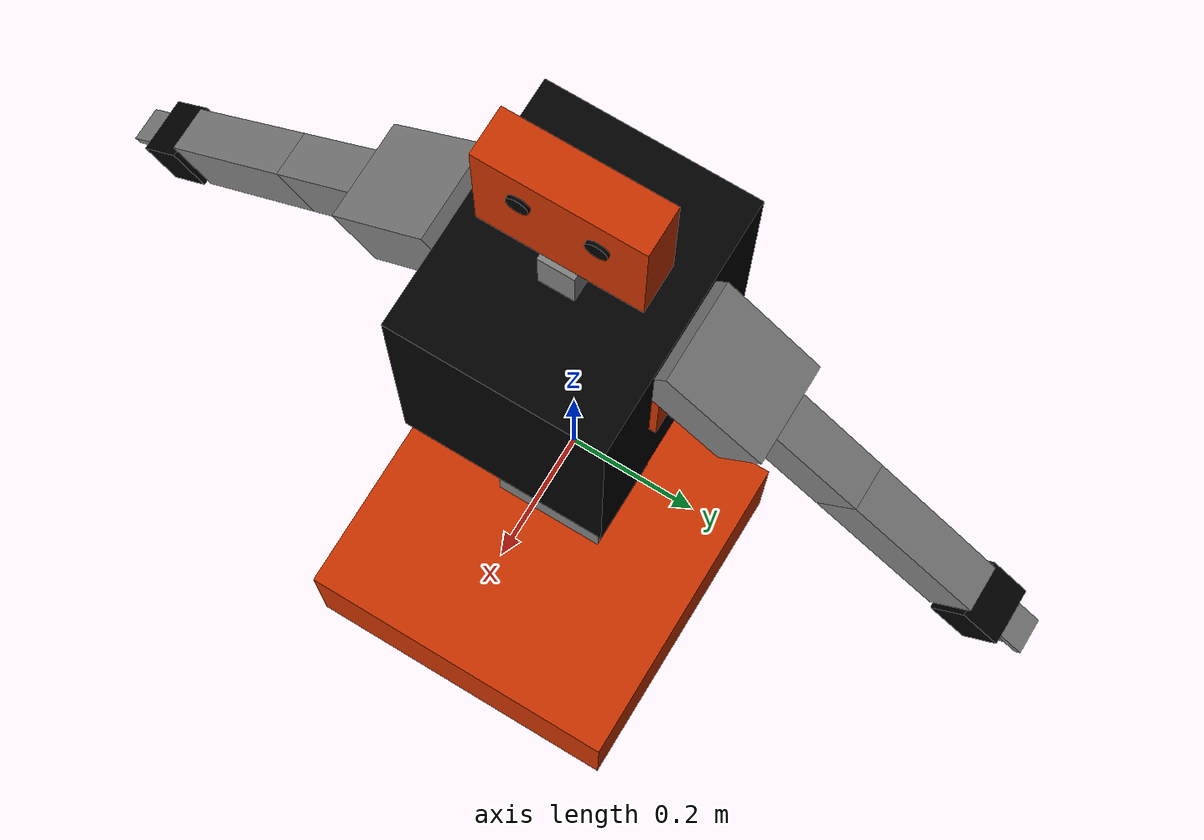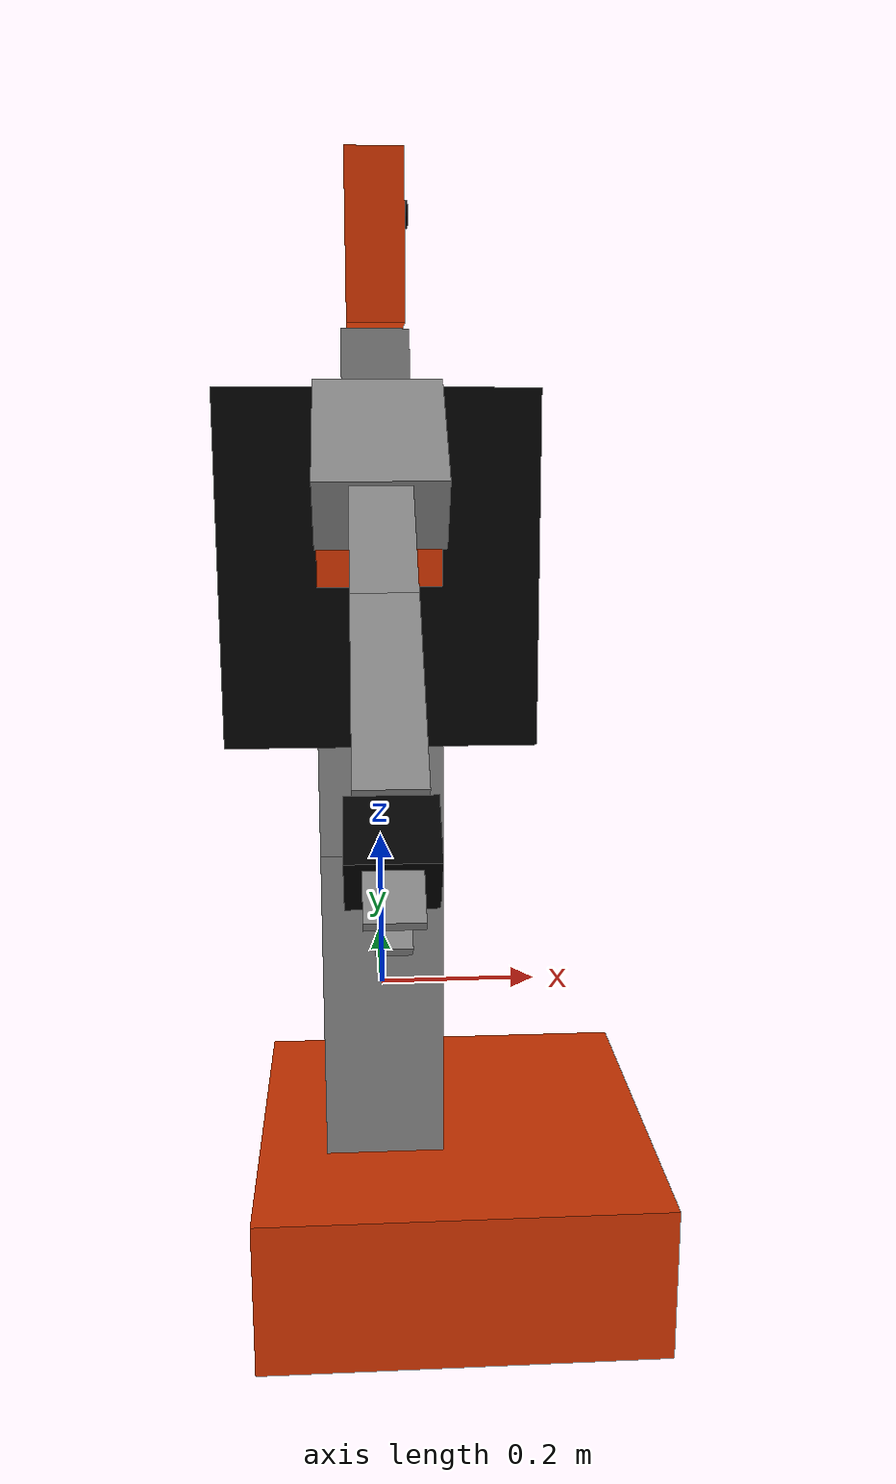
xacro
<?xml version="1.0"?>
<robot xmlns:xacro="http://www.ros.org/wiki/xacro" name="tangerige">

<!-- .......................MACROS.................... -->

  <xacro:macro name="default_physics" params="mass len rad">
  	<collision>
      <geometry>
        <cylinder length="${len}" radius="${rad}"/>
      </geometry>
    </collision>
  	<inertial>
  		<mass value="${mass}" />
  		<inertia ixx="1.0" ixy="0.0" ixz="0.0"
  											 iyy="1.0" iyz="0.0"
  											 izz="1.0" />
  	</inertial>
  	<dynamics damping="0.7" friction="1000.0"/>
  </xacro:macro>

  <xacro:macro name="gazebo_colors" params="name color">
  	<gazebo reference="${name}">
    	<material>Gazebo/${color}</material>
  	</gazebo>
  </xacro:macro>

<!-- ....................... END MACROS.................... -->

<!-- ................BASE................. -->

  <link name="base_laser">
    <visual>
      <geometry>
        <box size="0.176 0.15 0.4"/>
      </geometry>
      <material name="grey">
      	<color rgba="0.5 0.5 0.5 1"/>
      </material>
      <origin rpy="0 0 1.57075"/>
    </visual>
  </link>

  <xacro:gazebo_colors name="base_laser" color="Red" />

  <link name="base_link_robot">
    <visual>
      <geometry>
        <box size="0.51 0.51 0.2"/>
      </geometry>
      <material name="orange">
      	<color rgba=".8 .2 0 1"/>
      </material>
    </visual>
  </link>

  <xacro:gazebo_colors name="base_link" color="Red" />

  <joint name="laser_to_base_link" type="fixed">
    <parent link="base_laser"/>
    <child link="base_link_robot"/>
    <origin xyz="0.093 0 -0.3"/>
  </joint>

  <link name="upper_base_laser">
    <visual>
      <geometry>
        <box size="0.176 0.15 0.15"/>
      </geometry>
      <material name="grey"/>
    </visual>
  </link>

  <xacro:gazebo_colors name="upper_base_laser" color="Gray" />

  <joint name="laser_to_upper_base" type="fixed">
    <parent link="base_laser"/>
    <child link="upper_base_laser"/>
    <origin rpy="0 0 -1.57075" xyz="0 0 0.275"/>
  </joint>

  <link name="superior_link">
    <visual>
      <geometry>
        <box size="0.300 0.360 0.4"/>
      </geometry>
      <material name="black">
      	<color rgba="0 0 0 1"/>
      </material>
    </visual>
  </link>

  <xacro:gazebo_colors name="superior_link" color="Black" />

  <joint name="upper_base_to_superior_link" type="fixed">
    <parent link="upper_base_laser"/>
    <child link="superior_link"/>
    <origin xyz="0 0 0.275"/>
  </joint>

  <!-- ................END BASE................. -->

  <!-- ................HEAD................. -->

  <link name="neck_link">
    <visual>
      <geometry>
        <box size="0.05 0.08 0.07"/>
      </geometry>
      <material name="grey"/>
    </visual>
  </link>

  <xacro:gazebo_colors name="neck_link" color="Red" />

  <joint name="superior_to_neck_link" type="fixed">
    <parent link="superior_link"/>
    <child link="neck_link"/>
    <origin xyz="0 0 0.235"/>
  </joint>

  <link name="neck_z_revolute">
  </link>
<!-- These joint are really revolute...change them back! -->
  <joint name="neck_to_z_revolute" type="fixed">
  	<axis xyz="0 0 1"/>
  	<limit effort="1000.0" lower="-0.7853" upper="0.7853" velocity="5"/>
    <parent link="neck_link"/>
    <child link="neck_z_revolute"/>
  </joint>

  <link name="neck_x_revolute">
  </link>

  <joint name="z_revolute_to_x_revolute" type="fixed">
  	<axis xyz="1 0 0"/>
  	<limit effort="1000.0" lower="-0.3926" upper="0.3926" velocity="5"/>
    <parent link="neck_z_revolute"/>
    <child link="neck_x_revolute"/>
  </joint>

  <link name="head">
    <visual>
      <geometry>
        <box size="0.222 0.065 0.18"/>
      </geometry>
      <material name="orange"/>
    </visual>
  </link>

  <xacro:gazebo_colors name="head" color="Red" />

  <joint name="revolute_head" type="fixed">
    <parent link="neck_x_revolute"/>
    <child link="head"/>
    <origin xyz="0 0 0.125"/>
  </joint>

  <link name="right_eye">
    <visual>
      <geometry>
        <cylinder length="0.015" radius="0.015"/>
      </geometry>
      <material name="black"/>
      <origin rpy="-1.57075 0 0" />
    </visual>
  </link>

  <joint name="right_eye_to_head" type="fixed">
    <parent link="head"/>
    <child link="right_eye"/>
    <origin xyz="0.05 0.03 0.03"/>
  </joint>

  <link name="left_eye">
    <visual>
      <geometry>
        <cylinder length="0.015" radius="0.015"/>
      </geometry>
      <material name="black"/>
      <origin rpy="-1.57075 0 0" />
    </visual>
  </link>

  <joint name="left_eye_to_head" type="fixed">
    <parent link="head"/>
    <child link="left_eye"/>
    <origin xyz="-0.05 0.03 0.03"/>
  </joint>

  <!-- ................END HEAD................. -->

  <!-- ................RIGHT ARM................. -->

  <link name="right_shoulder_link">
    <visual>
      <geometry>
        <box size="0.01 0.14 0.17"/>
      </geometry>
      <origin xyz="0.05 0 -0.05" rpy="0 1.57075 0"/>
      <material name="orange"/>
    </visual>
  </link>

  <xacro:gazebo_colors name="right_shoulder_link" color="Gray" />

  <joint name="superior_link_to_right_shoulder" type="fixed">
    <parent link="superior_link"/>
    <child link="right_shoulder_link"/>
    <origin xyz="0.205 0 0.12" rpy="0 1.57075 0"/>
  </joint>

  <link name="right_shoulder_x_revolute">
  </link>

  <xacro:gazebo_colors name="right_shoulder_x_revolute" color="Gray" />

  <joint name="right_shoulder_x_revolute" type="revolute">
  	<axis xyz="0 0 1"/>
  	<limit effort="1000.0" lower="-0.34906585" upper="3.351032164" velocity="5"/>
    <parent link="right_shoulder_link"/>
    <child link="right_shoulder_x_revolute"/>
    <origin xyz="0 0 0" rpy="0 0 0"/>
  </joint>

  <link name="right_shoulder_y_revolute">
  	<visual>
      <geometry>
        <box size="0.09 0.17 0.14"/>
      </geometry>
      <origin xyz="0 0 0" rpy="0 0 0"/>
      <material name="grey"/>
    </visual>
  </link>

  <joint name="right_shoulder_y_revolute" type="revolute">
  	<axis xyz="0 0 1"/>
  	<limit effort="1000.0" lower="-3.490658504" upper="-1.483529864" velocity="5"/>
    <parent link="right_shoulder_x_revolute"/>
    <child link="right_shoulder_y_revolute"/>
    <origin xyz="0 0 0" rpy="-1.57075 0 0"/>
  </joint>

  <link name="upper_right_arm_z_revolute">
  	<visual>
      <geometry>
        <box size="0.08 0.065 -0.154"/>
      </geometry>
      <origin xyz="0 0 -0.077" rpy="0 0 0"/>
      <material name="grey"/>
    </visual>
  </link>

  <joint name="upper_right_arm_z_revolute" type="revolute">
  	<axis xyz="0 0 1"/>
  	<limit effort="1000.0" lower="-3.403392041" upper="0.261799388" velocity="5"/>
    <parent link="right_shoulder_y_revolute"/>
    <child link="upper_right_arm_z_revolute"/>
    <origin xyz="0 0.239 0" rpy="-1.57075 0 0"/>
  </joint>

  <link name="upper_right_arm_x_revolute">
  	<visual>
      <geometry>
        <box size="0.08 0.232 0.065"/>
      </geometry>
      <origin xyz="0 0.116 0" rpy="0 0 0"/>
      <material name="grey"/>
    </visual>
  </link>

  <xacro:gazebo_colors name="upper_right_arm_x_revolute" color="Gray" />

  <joint name="upper_right_arm_x_revolute" type="revolute">
  	<axis xyz="0 0 1"/>
  	<limit effort="1000.0" lower="-2.251474735" upper="1.570796327" velocity="0"/>
    <parent link="upper_right_arm_z_revolute"/>
    <child link="upper_right_arm_x_revolute"/>
    <origin xyz="0 0 0" rpy="1.57075 0 0"/>
  </joint>

  <link name="wrist_right_arm_z_revolute">
  </link>

  <joint name="wrist_right_arm_z_revolute" type="revolute">
  	<axis xyz="0 0 1"/>
  	<limit effort="1000.0" lower="0" upper="3.141592654" velocity="5"/>
    <parent link="upper_right_arm_x_revolute"/>
    <child link="wrist_right_arm_z_revolute"/>
    <origin xyz="0 0.232 0" rpy="-1.57075 0 0"/>
  </joint>

  <link name="wrist_right_arm_x_revolute">
  </link>

  <joint name="wrist_right_arm_x_revolute" type="revolute">
  	<axis xyz="0 0 1"/>
  	<limit effort="1000.0" lower="-1.047197551" upper="1.483529864" velocity="5"/>
    <parent link="wrist_right_arm_z_revolute"/>
    <child link="wrist_right_arm_x_revolute"/>
    <origin xyz="0 0 0" rpy="1.57075 0 0"/>
  </joint>

  <link name="wrist_right_arm">
    <visual>
      <geometry>
        <box size="0.065 0.069 0.08"/>
      </geometry>
      <origin xyz="0 -0.0345 0" rpy="0 0 0"/>
      <material name="black"/>
    </visual>
  </link>

  <xacro:gazebo_colors name="wrist_right_arm" color="Black" />

  <joint name="wrist_right_arm" type="fixed">
    <parent link="wrist_right_arm_x_revolute"/>
    <child link="wrist_right_arm"/>
    <origin xyz="0 0.069 0"/>
  </joint>

  <link name="finger1_right_arm">
    <visual>
      <geometry>
        <box size="0.01 0.05 0.03"/>
      </geometry>
      <origin xyz="0 0.025 0" />
      <material name="grey"/>
    </visual>
  </link>

  <xacro:gazebo_colors name="finger1_right_arm" color="Gray" />

  <joint name="finger1_right_arm" type="fixed">
    <parent link="wrist_right_arm"/>
    <child link="finger1_right_arm"/>
    <origin rpy="0 0 0" xyz="-0.01875 0 0"/>
  </joint>

  <link name="finger2_right_arm">
    <visual>
      <geometry>
        <box size="0.01 0.05 0.05"/>
      </geometry>
      <origin xyz="0 0.025 0" />
      <material name="grey"/>
    </visual>
  </link>

  <xacro:gazebo_colors name="finger2_right_arm" color="Gray" />

  <joint name="finger2_right_arm" type="fixed">
    <parent link="wrist_right_arm"/>
    <child link="finger2_right_arm"/>
    <origin rpy="0 0 0" xyz="0.01875 0 0"/>
  </joint>

  <!-- ................END RIGHT ARM................. -->

    <!-- ................LEFT ARM................. -->

   <link name="left_shoulder_link">
    <visual>
      <geometry>
        <box size="0.01 0.14 0.17"/>
      </geometry>
      <origin xyz="0.05 0 0.05" rpy="0 1.57075 0"/>
      <material name="orange"/>
    </visual>
  </link>

  <xacro:gazebo_colors name="left_shoulder_link" color="Gray" />

  <joint name="superior_link_to_left_shoulder" type="fixed">
    <parent link="superior_link"/>
    <child link="left_shoulder_link"/>
    <origin xyz="-0.205 0 0.12" rpy="0 1.57075 0"/>
  </joint>

  <link name="left_shoulder_x_revolute">
  </link>

  <xacro:gazebo_colors name="left_shoulder_x_revolute" color="Gray" />

  <joint name="left_shoulder_x_revolute" type="revolute">
  	<axis xyz="0 0 1"/>
  	<limit effort="1000.0" lower="-0.34906585" upper="3.351032164" velocity="5"/>
    <parent link="left_shoulder_link"/>
    <child link="left_shoulder_x_revolute"/>
    <origin xyz="0 0 0" rpy="0 0 0"/>
  </joint>

  <link name="left_shoulder_y_revolute">
  	<visual>
      <geometry>
        <box size="0.09 0.17 0.14"/>
      </geometry>
      <origin xyz="0 0 0" rpy="0 0 0"/>
      <material name="grey"/>
    </visual>
  </link>

  <joint name="left_shoulder_y_revolute" type="revolute">
  	<axis xyz="0 0 1"/>
  	<limit effort="1000.0" lower="-3.490658504" upper="-1.483529864" velocity="5"/>
    <parent link="left_shoulder_x_revolute"/>
    <child link="left_shoulder_y_revolute"/>
    <origin xyz="0 0 0" rpy="1.57075 0 0"/>
  </joint>

  <link name="upper_left_arm_z_revolute">
  	<visual>
      <geometry>
        <box size="0.08 0.065 -0.154"/>
      </geometry>
      <origin xyz="0 0 0.077" rpy="0 0 0"/>
      <material name="grey"/>
    </visual>
  </link>

  <joint name="upper_left_arm_z_revolute" type="revolute">
  	<axis xyz="0 0 1"/>
  	<limit effort="1000.0" lower="-3.403392041" upper="0.261799388" velocity="5"/>
    <parent link="left_shoulder_y_revolute"/>
    <child link="upper_left_arm_z_revolute"/>
    <origin xyz="0 0.239 0" rpy="1.57075 0 0"/>
  </joint>

  <link name="upper_left_arm_x_revolute">
  	<visual>
      <geometry>
        <box size="0.08 0.232 0.065"/>
      </geometry>
      <origin xyz="0 0.116 0" rpy="0 0 0"/>
      <material name="grey"/>
    </visual>
  </link>

  <xacro:gazebo_colors name="upper_left_arm_x_revolute" color="Gray" />

  <joint name="upper_left_arm_x_revolute" type="revolute">
  	<axis xyz="0 0 1"/>
  	<limit effort="1000.0" lower="-2.251474735" upper="1.570796327" velocity="0"/>
    <parent link="upper_left_arm_z_revolute"/>
    <child link="upper_left_arm_x_revolute"/>
    <origin xyz="0 0 0" rpy="-1.57075 0 0"/>
  </joint>

  <link name="wrist_left_arm_z_revolute">
  </link>

  <joint name="wrist_left_arm_z_revolute" type="revolute">
  	<axis xyz="0 0 1"/>
  	<limit effort="1000.0" lower="0" upper="3.141592654" velocity="5"/>
    <parent link="upper_left_arm_x_revolute"/>
    <child link="wrist_left_arm_z_revolute"/>
    <origin xyz="0 0.232 0" rpy="1.57075 0 0"/>
  </joint>

  <link name="wrist_left_arm_x_revolute">
  </link>

  <joint name="wrist_left_arm_x_revolute" type="revolute">
  	<axis xyz="0 0 1"/>
  	<limit effort="1000.0" lower="-1.047197551" upper="1.483529864" velocity="5"/>
    <parent link="wrist_left_arm_z_revolute"/>
    <child link="wrist_left_arm_x_revolute"/>
    <origin xyz="0 0 0" rpy="-1.57075 0 0"/>
  </joint>

  <link name="wrist_left_arm">
    <visual>
      <geometry>
        <box size="0.065 0.069 0.08"/>
      </geometry>
      <origin xyz="0 -0.0345 0" rpy="0 0 0"/>
      <material name="black"/>
    </visual>
  </link>

  <xacro:gazebo_colors name="wrist_left_arm" color="Black" />

  <joint name="wrist_left_arm" type="fixed">
    <parent link="wrist_left_arm_x_revolute"/>
    <child link="wrist_left_arm"/>
    <origin xyz="0 0.069 0"/>
  </joint>

  <link name="finger1_left_arm">
    <visual>
      <geometry>
        <box size="0.01 0.05 0.03"/>
      </geometry>
      <origin xyz="0 0.025 0" />
      <material name="grey"/>
    </visual>
  </link>

  <xacro:gazebo_colors name="finger1_left_arm" color="Gray" />

  <joint name="finger1_left_arm" type="fixed">
    <parent link="wrist_left_arm"/>
    <child link="finger1_left_arm"/>
    <origin rpy="0 0 0" xyz="-0.01875 0 0"/>
  </joint>

  <link name="finger2_left_arm">
    <visual>
      <geometry>
        <box size="0.01 0.05 0.05"/>
      </geometry>
      <origin xyz="0 0.025 0" />
      <material name="grey"/>
    </visual>
  </link>

  <xacro:gazebo_colors name="finger2_left_arm" color="Gray" />

  <joint name="finger2_left_arm" type="fixed">
    <parent link="wrist_left_arm"/>
    <child link="finger2_left_arm"/>
    <origin rpy="0 0 0" xyz="0.01875 0 0"/>
  </joint>

  <!-- ................END LEFT ARM................. -->

</robot>
